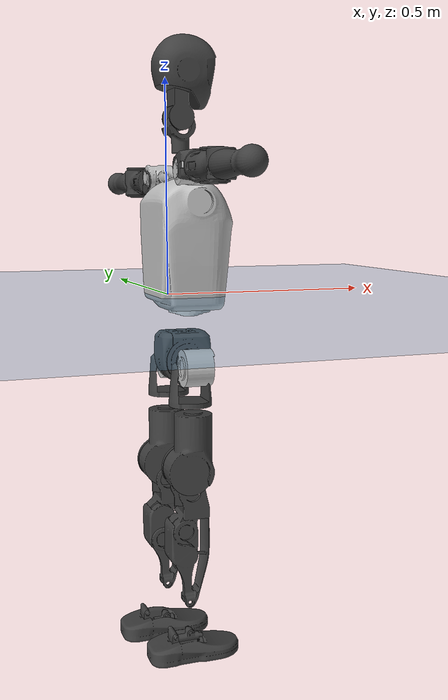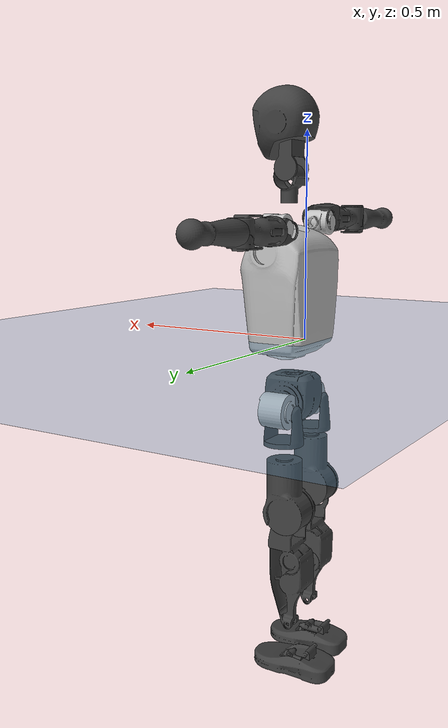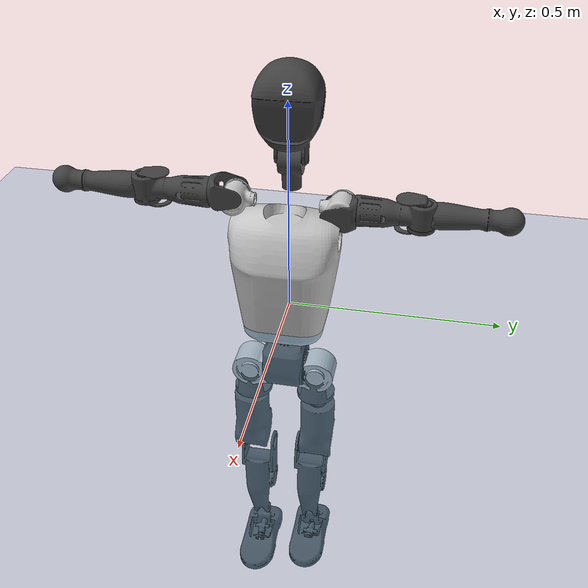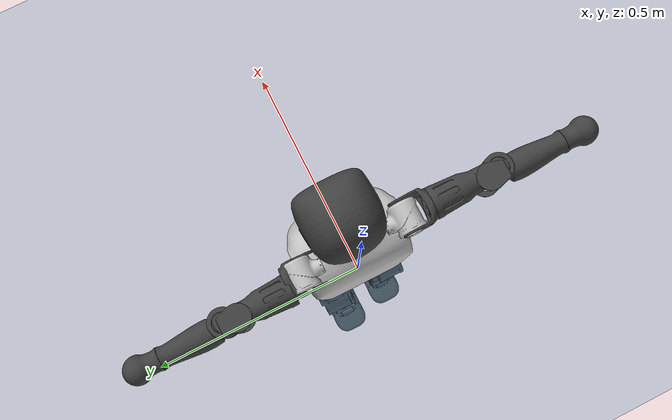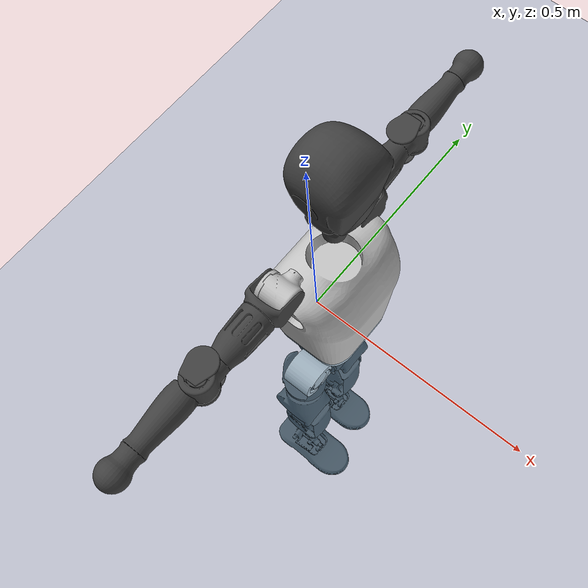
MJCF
<mujoco model="T1">
  <compiler angle="radian" assetdir="assets" balanceinertia="true" inertiafromgeom="false"/>

  <option timestep="0.005" density="1.2" viscosity="2e-05"/>

  <size nkey="1"/>

  <visual>
    <quality shadowsize="8192"/>
    <map shadowclip="0.5"/>
  </visual>

  <default>
    <default class="/">
      <joint armature="0.01" damping="0.01" frictionloss="0.1"/>
      <geom contype="0" conaffinity="0" group="1" solref="-1000 -80"/>
      <site size="0.01 0.005 0.005" group="5"/>
      <general forcelimited="true" biastype="affine" gainprm="25" biasprm="0 -25 -0.6"/>
      <default class="t1">
        <geom rgba="0.25 0.25 0.25 1"/>
        <default class="visual">
          <geom type="mesh" group="2"/>
        </default>
        <default class="collision">
          <geom group="3"/>
        </default>
        <default class="foot">
          <geom size="0.1115 0.05 0.015" type="box" condim="6" group="4" priority="1" solimp="0.015 1 0.015"/>
        </default>
        <default class="reward_collision_sphere">
          <geom group="5" rgba="1 0 0 1"/>
        </default>
      </default>
    </default>
  </default>

  <asset>
    <texture type="skybox" colorspace="auto" name="//unnamed_texture_0" builtin="gradient" rgb1="0.95 0.95 0.95" rgb2="0.95 0.95 0.95" width="100" height="600"/>
    <texture type="2d" colorspace="auto" name="texplane" builtin="checker" rgb1="0.345 0.575 0.748" rgb2="0.345 0.575 0.748" markrgb="1 1 1" width="512" height="512"/>
    <material name="MatPlane" class="/" texture="texplane" texuniform="true" texrepeat="2 2" specular="0.9"/>
    <mesh name="Trunk" class="/" file="Trunk.stl"/>
    <mesh name="H1" class="/" file="H1.stl"/>
    <mesh name="H2" class="/" file="H2.stl"/>
    <mesh name="AL1" class="/" file="AL1.stl"/>
    <mesh name="AL2" class="/" file="AL2.stl"/>
    <mesh name="AL3" class="/" file="AL3.stl"/>
    <mesh name="left_hand_link" class="/" file="left_hand_link.stl"/>
    <mesh name="AR1" class="/" file="AR1.stl"/>
    <mesh name="AR2" class="/" file="AR2.stl"/>
    <mesh name="AR3" class="/" file="AR3.stl"/>
    <mesh name="right_hand_link" class="/" file="right_hand_link.stl"/>
    <mesh name="Waist" class="/" file="Waist.stl"/>
    <mesh name="Hip_Pitch_Left" class="/" file="Hip_Pitch_Left.stl"/>
    <mesh name="Hip_Roll_Left" class="/" file="Hip_Roll_Left.stl"/>
    <mesh name="Hip_Yaw_Left" class="/" file="Hip_Yaw_Left.stl"/>
    <mesh name="Shank_Left" class="/" file="Shank_Left.stl"/>
    <mesh name="Ankle_Cross_Left" class="/" file="Ankle_Cross_Left.stl"/>
    <mesh name="left_foot_link" class="/" file="left_foot_link.stl"/>
    <mesh name="Hip_Pitch_Right" class="/" file="Hip_Pitch_Right.stl"/>
    <mesh name="Hip_Roll_Right" class="/" file="Hip_Roll_Right.stl"/>
    <mesh name="Hip_Yaw_Right" class="/" file="Hip_Yaw_Right.stl"/>
    <mesh name="Shank_Right" class="/" file="Shank_Right.stl"/>
    <mesh name="Ankle_Cross_Right" class="/" file="Ankle_Cross_Right.stl"/>
    <mesh name="right_foot_link" class="/" file="right_foot_link.stl"/>
  </asset>

  <worldbody>
    <geom name="floor" class="/" size="100 100 0.125" type="plane" group="0" material="MatPlane"/>
    <light name="toplight_shadow" class="/" pos="0 0 5" dir="0.0990148 0.0990148 -0.990148" type="directional" ambient="0.04 0.04 0.04" diffuse="0.55 0.55 0.55" specular="0.12 0.12 0.12"/>
    <light name="toplight_fill" class="/" pos="0 0 5" dir="0.0990148 0.0990148 -0.990148" type="directional" castshadow="false" ambient="0.04 0.04 0.04" diffuse="0.3 0.3 0.3" specular="0.08 0.08 0.08"/>
    <body name="trunk" childclass="t1" pos="-0.00890459 0.00125366 -0.000626487" quat="0.999999 -0.00099934 -0.000413 0.000796252">
      <inertial pos="0.0295004 -0.0036556 0.144215" quat="0.999541 0.0202882 -0.0222623 0.00323606" mass="7.08274" diaginertia="0.00390991 0.022832 0.19868"/>
      <joint name="//unnamed_joint_0" type="free" armature="0" damping="0" frictionloss="0"/>
      <geom name="//unnamed_geom_1" class="visual" rgba="0.76 0.76 0.76 1" mesh="Trunk"/>
      <geom name="//unnamed_geom_2" class="collision" size="0.0659928 0.0879904 0.131986" pos="0.0328461 0 0.156447" type="box"/>
      <geom name="//unnamed_geom_3" class="reward_collision_sphere" size="0.101189" pos="0.0328461 0 0.130373"/>
      <geom name="//unnamed_geom_4" class="reward_collision_sphere" size="0.0131986" pos="0.0328461 0.0670265 0"/>
      <geom name="//unnamed_geom_5" class="reward_collision_sphere" size="0.0131986" pos="0.0328461 -0.0670265 0"/>
      <geom name="//unnamed_geom_6" class="reward_collision_sphere" size="0.0131986" pos="0.0328461 0.0843746 0.234671"/>
      <geom name="//unnamed_geom_7" class="reward_collision_sphere" size="0.0131986" pos="0.0328461 -0.0843746 0.234671"/>
      <site name="imu" pos="0.0657636 0.0306312 -0.049066" size="0.00879904"/>
      <camera name="track" pos="0 -1.57709 0" quat="0.707107 0.707107 0 0" mode="trackcom"/>
      <camera name="ego_camera" pos="0.0667871 0 0.547566" quat="-0.5 -0.5 0.5 0.5"/>
      <body name="H1" pos="0.0487928 0.0135653 0.331348" quat="0.999998 -0.000930162 0.00107533 0.00147816">
        <inertial pos="0.00771694 -0.00371208 0.0816376" quat="0.792005 0.0345917 -0.00808681 0.60948" mass="0.259965" diaginertia="1.18049e-05 7.95019e-05 0.000555375"/>
        <joint name="AAHead_yaw" pos="0 0 0" axis="0.0172329 0.061625 0.997951" range="-1.56385 1.47428" armature="0.00405794" damping="0" frictionloss="0.0546454"/>
        <geom name="//unnamed_geom_8" class="visual" mesh="H1"/>
        <body name="H2" pos="-0.00534641 -0.000630251 0.0813095" quat="0.999985 0.00393759 -0.00299648 0.00217136">
          <inertial pos="0.0038991 0.0149989 0.128293" quat="0.989205 0.109247 -0.0745303 -0.0631098" mass="0.391199" diaginertia="0.000112895 0.000623759 0.00622007"/>
          <joint name="Head_pitch" pos="0 0 0" axis="0.00232377 -0.999996 0.0015299" stiffness="0.0372221" range="-1.30406 0.365875" armature="0.00520842" damping="0" frictionloss="0.0933015"/>
          <geom name="//unnamed_geom_9" class="visual" mesh="H2"/>
          <geom name="//unnamed_geom_10" class="collision" size="0.0703923" pos="0.00547435 0 0.14341"/>
          <geom name="//unnamed_geom_11" class="reward_collision_sphere" size="0.0791913" pos="0.0109487 0 0.130373"/>
        </body>
      </body>
      <body name="AL1" pos="0.0257158 0.0714161 0.277225" quat="1 -0.000123896 8.63263e-05 0.000185864">
        <inertial pos="0.0133563 0.0221883 0.0103458" quat="0.489792 0.496785 -0.51619 0.496847" mass="0.298478" diaginertia="5.4649e-05 0.000322289 0.000993125"/>
        <joint name="Left_Shoulder_Pitch" pos="0 0 0" axis="-0.00890598 0.998969 -0.0445063" range="-3.43577 1.25022" armature="0.00538602" damping="0" frictionloss="0.128734"/>
        <geom name="//unnamed_geom_12" class="visual" rgba="0.76 0.76 0.76 1" mesh="AL1"/>
        <body name="AL2" pos="-0.000693001 0.0255535 -0.00901144" quat="0.999996 -0.00271389 0.000366326 -0.000588785">
          <inertial pos="0.00189196 0.0335794 -0.00735477" quat="0.486891 0.512676 -0.487072 0.5127" mass="0.103442" diaginertia="1.43737e-05 7.26837e-05 0.00061701"/>
          <joint name="Left_Shoulder_Roll" pos="0 0 0" axis="-0.999563 0.0217994 -0.0199494" stiffness="0.0150474" range="-1.75235 1.97993" armature="0.00924188" damping="0" frictionloss="0.0945629"/>
          <geom name="//unnamed_geom_13" class="visual" mesh="AL2"/>
          <body name="AL3" pos="-0.0130989 0.0480994 0.000772705" quat="0.999991 0.00283551 -0.00305224 0.000629954">
            <inertial pos="-0.00157486 0.0637778 -0.0109548" quat="0.679633 0.732505 -0.0321927 0.0223456" mass="0.678518" diaginertia="0.000517306 0.00375586 0.00220834"/>
            <joint name="Left_Elbow_Pitch" pos="0 0 0" axis="-0.00794288 -0.999968 -0.000879121" stiffness="0.0251355" range="-2.24786 2.04455" armature="0.0137068" damping="0.0388054" frictionloss="0.0858501"/>
            <geom name="//unnamed_geom_14" class="visual" mesh="AL3"/>
            <geom name="//unnamed_geom_15" class="collision" size="0.0263971 0.0659928" pos="0 0.0394274 0" quat="0.707105 0.707108 0 0" type="cylinder"/>
            <geom name="//unnamed_geom_16" class="reward_collision_sphere" size="0.0316765"/>
            <body name="left_hand_link" pos="-0.00531069 0.116825 0.00144061" quat="0.999987 0.00457822 -0.000158696 0.00222897">
              <inertial pos="-0.0149554 0.0977255 0.00276499" quat="0.720481 0.6932 0.0185857 -0.00600598" mass="0.252613" diaginertia="0.00040911 0.00254022 0.000953711"/>
              <joint name="Left_Elbow_Yaw" pos="0 0 0" axis="0.000939699 0.0447124 0.998999" range="-2.5866 0.164465" armature="0.00384594" damping="0" frictionloss="0.0415161"/>
              <geom name="//unnamed_geom_17" class="visual" mesh="left_hand_link"/>
              <geom name="//unnamed_geom_18" class="collision" size="0.0263971 0.0769916" pos="0 0.102511 0" quat="0.707105 0.707108 0 0" type="cylinder"/>
              <geom name="//unnamed_geom_19" class="reward_collision_sphere" size="0.0439952"/>
              <geom name="//unnamed_geom_20" class="reward_collision_sphere" size="0.0307966" pos="0 0.0867402 0"/>
              <geom name="//unnamed_geom_21" class="reward_collision_sphere" size="0.0307966" pos="0 0.169538 0"/>
            </body>
          </body>
        </body>
      </body>
      <body name="AR1" pos="0.0329761 -0.0714983 0.284441" quat="0.999994 0.000357531 -0.00226518 0.00264384">
        <inertial pos="-0.00723928 -0.0402648 0.00104705" quat="0.502203 0.496006 -0.505597 0.496127" mass="0.359698" diaginertia="7.03534e-05 0.000382361 0.00108507"/>
        <joint name="Right_Shoulder_Pitch" pos="0 0 0" axis="0.00620553 -0.999964 -0.00571679" range="-1.22736 3.21634" armature="0.0051924" damping="0.0732028" frictionloss="0.122836"/>
        <geom name="//unnamed_geom_22" class="visual" rgba="0.76 0.76 0.76 1" mesh="AR1"/>
        <body name="AR2" pos="0.000957522 -0.0434033 0.0126341" quat="0.999999 0.000824795 -0.000442519 0.000925781">
          <inertial pos="0.00990817 -0.0402846 0.0137542" quat="0.514122 0.490051 -0.511008 0.484149" mass="0.0975758" diaginertia="1.75764e-05 0.0001093 0.000545735"/>
          <joint name="Right_Shoulder_Roll" pos="0 0 0" axis="-0.999535 -0.0249284 -0.0175419" stiffness="0.0582906" range="-2.02189 1.61361" armature="0.00627451" damping="0" frictionloss="0.0883875"/>
          <geom name="//unnamed_geom_23" class="visual" mesh="AR2"/>
          <body name="AR3" pos="1.40863e-05 -0.0564205 -0.00474435" quat="1 -8.25454e-06 7.24634e-05 1.6492e-05">
            <inertial pos="0.012789 -0.0725954 0.000998598" quat="0.699642 0.713607 -0.0343216 0.00938809" mass="0.708976" diaginertia="0.000664272 0.00390172 0.00197912"/>
            <joint name="Right_Elbow_Pitch" pos="0 0 0" axis="0.0148017 0.999357 -0.0326684" stiffness="0.0532221" range="-2.28795 2.44334" armature="0.00829969" damping="0.0197538" frictionloss="0.14506"/>
            <geom name="//unnamed_geom_24" class="visual" mesh="AR3"/>
            <geom name="//unnamed_geom_25" class="collision" size="0.0263971 0.0659928" pos="0 -0.0394274 0" quat="0.707105 0.707108 0 0" type="cylinder"/>
            <geom name="//unnamed_geom_26" class="reward_collision_sphere" size="0.0316765"/>
            <body name="right_hand_link" pos="-0.00869666 -0.123893 -0.00278479" quat="1 0.000131296 1.20253e-05 0.000156403">
              <inertial pos="-0.00092975 -0.0834081 -0.0107755" quat="0.705769 0.708441 0.000315163 0.000521362" mass="0.226168" diaginertia="0.000394039 0.00292349 0.00089598"/>
              <joint name="Right_Elbow_Yaw" pos="0 0 0" axis="0.000881481 -0.0033154 0.999994" range="-0.165199 2.54371" armature="0.00964303" damping="0.0312231" frictionloss="0.142487"/>
              <geom name="//unnamed_geom_27" class="visual" mesh="right_hand_link"/>
              <geom name="//unnamed_geom_28" class="collision" size="0.0263971 0.0769916" pos="0 -0.102511 0" quat="0.707105 0.707108 0 0" type="cylinder"/>
              <geom name="//unnamed_geom_29" class="reward_collision_sphere" size="0.0439952"/>
              <geom name="//unnamed_geom_30" class="reward_collision_sphere" size="0.0307966" pos="0 -0.0867402 0"/>
              <geom name="//unnamed_geom_31" class="reward_collision_sphere" size="0.0307966" pos="0 -0.169538 0"/>
            </body>
          </body>
        </body>
      </body>
      <body name="Waist" pos="0.0421844 -0.00471337 -0.154588" quat="0.999998 -0.000861826 0.00187849 -0.000203376">
        <inertial pos="0.00424615 -0.00103944 0.00993478" quat="0.979235 -0.013237 -0.20045 -0.0272587" mass="1.99596" diaginertia="0.000219099 0.00157223 0.0148034"/>
        <joint name="Waist" pos="0 0 0" axis="0.0245536 -0.047129 0.998587" range="-1.40709 1.73056" armature="0.00921748" damping="0.0012688" frictionloss="0.142139"/>
        <geom name="//unnamed_geom_32" class="visual" mesh="Waist"/>
        <body name="Hip_Pitch_Left" pos="0.00107542 0.0791684 0.00444837" quat="1 0.0002744 -0.000154126 6.45883e-05">
          <inertial pos="0.00320336 0.00493605 -0.0290147" quat="0.980566 0.193607 0.0240981 0.0206164" mass="0.711756" diaginertia="9.85128e-05 0.000388573 0.00399731"/>
          <joint name="Left_Hip_Pitch" pos="0 0 0" axis="-0.00823936 0.999946 -0.00639877" range="-1.7015 1.58391" armature="0.00518521" damping="0" frictionloss="0.0852771"/>
          <geom name="//unnamed_geom_33" class="visual" rgba="0.76 0.76 0.76 1" mesh="Hip_Pitch_Left"/>
          <body name="Hip_Roll_Left" pos="-0.0126788 -0.00360866 -0.0283196" quat="0.999983 -0.00140729 -0.00145255 -0.00548">
            <inertial pos="-0.00831987 0.000375893 -0.0711805" quat="0.706827 -0.00591516 -0.00607385 0.707335" mass="0.348512" diaginertia="0.000118359 0.000550357 0.00220321"/>
            <joint name="Left_Hip_Roll" pos="0 0 0" axis="-0.998388 0.0347987 -0.0448432" range="-1.83275 0.218666" armature="0.012475" damping="0.0426924" frictionloss="0.113765"/>
            <geom name="//unnamed_geom_34" class="visual" mesh="Hip_Roll_Left"/>
            <geom name="//unnamed_geom_35" class="reward_collision_sphere" size="0.0483947"/>
            <body name="Hip_Yaw_Left" pos="-0.00777958 0.00460438 -0.114569" quat="0.999982 -0.00383534 0.0012989 0.0043132">
              <inertial pos="0.00949862 0.00364896 -0.111654" quat="0.700415 -0.0182662 -0.0220608 0.713161" mass="1.5188" diaginertia="0.00109096 0.00797349 0.00998773"/>
              <joint name="Left_Hip_Yaw" pos="0 0 0" axis="0.0183994 0.0107483 -0.999773" stiffness="0.0607723" range="-1.28018 0.767973" armature="0.00851594" damping="0.00259295" frictionloss="0.0397062"/>
              <geom name="//unnamed_geom_36" class="visual" mesh="Hip_Yaw_Left"/>
              <geom name="//unnamed_geom_37" class="collision" size="0.0439952 0.0703923" type="cylinder"/>
              <body name="Shank_Left" pos="-0.0107097 -0.0127636 -0.169409" quat="1 0.000129061 7.57889e-06 1.15827e-05">
                <inertial pos="0.0106553 -0.00414553 -0.166792" quat="0.997132 -0.0573089 0.0096675 0.0484722" mass="1.30443" diaginertia="0.00171165 0.0086183 0.00622331"/>
                <joint name="Left_Knee_Pitch" pos="0 0 0" axis="0.0452591 0.998535 0.0296602" stiffness="0.00753578" range="0.0170981 2.13566" armature="0.0130112" damping="0" frictionloss="0.0297256"/>
                <geom name="//unnamed_geom_38" class="visual" mesh="Shank_Left"/>
                <geom name="//unnamed_geom_39" class="collision" size="0.0439952 0.0659928" pos="0 0 -0.156447" type="cylinder"/>
                <geom name="//unnamed_geom_40" class="reward_collision_sphere" size="0.0571937"/>
                <body name="Ankle_Cross_Left" pos="-0.00118582 0.00137435 -0.371427" quat="1 -0.000457594 0.00067707 6.73711e-05">
                  <inertial pos="-0.000838014 -0.00328588 -0.00917019" quat="0.441401 0.548613 0.549905 0.449214" mass="0.0447038" diaginertia="1.18336e-06 7.19592e-06 3.72133e-05"/>
                  <joint name="Left_Ankle_Pitch" pos="0 0 0" axis="0.0446939 0.998783 0.0208728" stiffness="0.0266041" range="-0.871204 0.531734" armature="0.00278692" damping="0.0221293" frictionloss="0.116657"/>
                  <geom name="//unnamed_geom_41" class="visual" mesh="Ankle_Cross_Left"/>
                  <body name="left_foot_link" pos="-0.0141653 -0.00357606 -0.0094052" quat="1 -0.000282516 -0.000280099 -0.000461336">
                    <inertial pos="0.012965 -0.00890366 -0.0117753" quat="0.00126797 0.623668 -0.0091895 0.781634" mass="0.475002" diaginertia="0.000130207 0.000681997 0.00925585"/>
                    <joint name="Left_Ankle_Roll" pos="0 0 0" axis="-0.999985 0.00418051 0.00345072" range="-0.601938 0.579762" armature="0.00891143" damping="0.0775747" frictionloss="0.0971245"/>
                    <geom name="//unnamed_geom_42" class="visual" mesh="left_foot_link"/>
                    <geom name="left_foot" class="foot" size="0.125986 0.0633349 0.0170353" pos="0.00547435 0 -0.0195559"/>
                    <geom name="//unnamed_geom_44" class="reward_collision_sphere" size="0.045755" pos="0.00547435 0 -0.0195559"/>
                    <geom name="//unnamed_geom_45" class="reward_collision_sphere" size="0.0263971" pos="0.0520064 -0.0181366 -0.0195559"/>
                    <geom name="//unnamed_geom_46" class="reward_collision_sphere" size="0.0263971" pos="-0.0383205 -0.0181366 -0.0195559"/>
                    <site name="left_foot" class="foot" pos="0.00547435 0 -0.0195559" size="0.00879904"/>
                  </body>
                </body>
              </body>
            </body>
          </body>
        </body>
        <body name="Hip_Pitch_Right" pos="0.00852935 -0.0847079 0.00892006" quat="0.999999 0.00102648 0.0008164 -2.86762e-05">
          <inertial pos="0.00254316 0.00464652 -0.0119842" quat="0.974261 -0.224152 0.0164016 0.0174023" mass="0.684777" diaginertia="0.000104248 0.000377298 0.0043316"/>
          <joint name="Right_Hip_Pitch" pos="0 0 0" axis="0.0280533 -0.9995 -0.0145723" stiffness="0.0301208" range="-1.27134 1.52905" armature="0.00919795" damping="0" frictionloss="0.144807"/>
          <geom name="//unnamed_geom_47" class="visual" rgba="0.76 0.76 0.76 1" mesh="Hip_Pitch_Right"/>
          <body name="Hip_Roll_Right" pos="-0.0130276 -0.0018004 -0.0308667" quat="0.999999 0.000304349 0.000880731 -0.00112237">
            <inertial pos="0.00518894 0.0103449 -0.0806437" quat="0.719783 -0.0127822 0.00516812 0.694062" mass="0.297402" diaginertia="9.55983e-05 0.000563069 0.001855"/>
            <joint name="Right_Hip_Roll" pos="0 0 0" axis="-0.997916 -0.0248699 0.0595345" stiffness="0.00916242" range="-0.177138 1.63775" armature="0.0129916" damping="0.00111034" frictionloss="0.0750457"/>
            <geom name="//unnamed_geom_48" class="visual" mesh="Hip_Roll_Right"/>
            <geom name="//unnamed_geom_49" class="reward_collision_sphere" size="0.0483947"/>
            <body name="Hip_Yaw_Right" pos="0.00240622 -0.00611956 -0.0959369" quat="0.999998 0.00111306 -0.00133964 0.000842267">
              <inertial pos="-0.0111481 -0.0125206 -0.108099" quat="0.733238 0.024297 -0.0701129 0.675911" mass="1.46327" diaginertia="0.00123249 0.00841431 0.0107638"/>
              <joint name="Right_Hip_Yaw" pos="0 0 0" axis="-0.00264986 -0.00314425 -0.999992" range="-0.913457 0.921588" armature="0.00957257" damping="0.0186593" frictionloss="0.0857421"/>
              <geom name="//unnamed_geom_50" class="visual" mesh="Hip_Yaw_Right"/>
              <geom name="//unnamed_geom_51" class="collision" size="0.0439952 0.0703923" type="cylinder"/>
              <body name="Shank_Right" pos="-0.0106433 0.0128996 -0.185384" quat="1 0.000630506 -0.000666728 -6.85873e-05">
                <inertial pos="0.010386 -0.0148855 -0.153222" quat="0.996757 -0.010339 -0.00441572 -0.0796869" mass="1.01988" diaginertia="0.00191134 0.0115932 0.00779279"/>
                <joint name="Right_Knee_Pitch" pos="0 0 0" axis="0.00244681 -0.999924 -0.0120625" range="-2.19164 -0.0116817" armature="0.00867858" damping="0" frictionloss="0.116729"/>
                <geom name="//unnamed_geom_52" class="visual" mesh="Shank_Right"/>
                <geom name="//unnamed_geom_53" class="collision" size="0.0439952 0.0659928" pos="0 0 -0.156447" type="cylinder"/>
                <geom name="//unnamed_geom_54" class="reward_collision_sphere" size="0.0571937"/>
                <body name="Ankle_Cross_Right" pos="0.00202928 -0.00414687 -0.361533" quat="1 0.00026278 6.80609e-05 -3.64155e-05">
                  <inertial pos="0.00217123 0.0113802 -0.0146856" quat="0.426021 0.600816 0.542927 0.403431" mass="0.0475507" diaginertia="1.37485e-06 1.05825e-05 4.90761e-05"/>
                  <joint name="Right_Ankle_Pitch" pos="0 0 0" axis="-0.00314694 -0.99879 0.0490832" range="-0.490666 0.866766" armature="0.00426818" damping="0.0688422" frictionloss="0.0867705"/>
                  <geom name="//unnamed_geom_55" class="visual" mesh="Ankle_Cross_Right"/>
                  <body name="right_foot_link" pos="-0.0013004 -0.00376948 -0.0278709" quat="1 2.75788e-05 -5.31155e-05 8.79437e-06">
                    <inertial pos="0.00356843 -0.00556105 -0.0239102" quat="-0.00559713 0.588981 0.00883426 0.808079" mass="0.48746" diaginertia="0.000113932 0.000685833 0.00828832"/>
                    <joint name="Right_Ankle_Roll" pos="0 0 0" axis="-0.999999 0.00154238 0.000496902" range="-0.443031 0.611118" armature="0.0105034" damping="0.00993739" frictionloss="0.127535"/>
                    <geom name="//unnamed_geom_56" class="visual" mesh="right_foot_link"/>
                    <geom name="right_foot" class="foot" size="0.0930887 0.0429709 0.0105605" pos="0.00547435 0 -0.0195559"/>
                    <geom name="//unnamed_geom_58" class="reward_collision_sphere" size="0.0351961"/>
                    <geom name="//unnamed_geom_59" class="reward_collision_sphere" size="0.0263971" pos="0.00547435 0 -0.0195559"/>
                    <geom name="//unnamed_geom_60" class="reward_collision_sphere" size="0.0263971" pos="0.0520064 0.0181366 -0.0195559"/>
                    <geom name="//unnamed_geom_61" class="reward_collision_sphere" size="0.0263971" pos="-0.0383205 0.0181366 -0.0195559"/>
                    <site name="right_foot" class="foot" pos="0.00547435 0 -0.0195559" size="0.00879904"/>
                  </body>
                </body>
              </body>
            </body>
          </body>
        </body>
      </body>
    </body>
  </worldbody>

  <contact>
    <pair class="/" geom1="floor" geom2="left_foot" name="//unnamed_contact_0"/>
    <pair class="/" geom1="floor" geom2="right_foot" name="//unnamed_contact_1"/>
  </contact>

  <actuator>
    <general name="AAHead_yaw" class="/" joint="AAHead_yaw" forcerange="-4.00573 4.00573" gainprm="18.9481" biasprm="0 -18.9481 -0.671191"/>
    <general name="Head_pitch" class="/" joint="Head_pitch" forcerange="-5.47616 5.47616" gainprm="18.9481" biasprm="0 -18.9481 -0.671191"/>
    <general name="Left_Shoulder_Pitch" class="/" joint="Left_Shoulder_Pitch" forcerange="-15.4752 15.4752" gainprm="18.9481" biasprm="0 -18.9481 -0.671191"/>
    <general name="Left_Shoulder_Roll" class="/" joint="Left_Shoulder_Roll" forcerange="-15.8768 15.8768" gainprm="18.9481" biasprm="0 -18.9481 -0.671191"/>
    <general name="Left_Elbow_Pitch" class="/" joint="Left_Elbow_Pitch" forcerange="-9.99439 9.99439" gainprm="18.9481" biasprm="0 -18.9481 -0.671191"/>
    <general name="Left_Elbow_Yaw" class="/" joint="Left_Elbow_Yaw" forcerange="-11.2922 11.2922" gainprm="18.9481" biasprm="0 -18.9481 -0.671191"/>
    <general name="Right_Shoulder_Pitch" class="/" joint="Right_Shoulder_Pitch" forcerange="-19.6018 19.6018" gainprm="18.9481" biasprm="0 -18.9481 -0.671191"/>
    <general name="Right_Shoulder_Roll" class="/" joint="Right_Shoulder_Roll" forcerange="-18.0564 18.0564" gainprm="18.9481" biasprm="0 -18.9481 -0.671191"/>
    <general name="Right_Elbow_Pitch" class="/" joint="Right_Elbow_Pitch" forcerange="-16.6712 16.6712" gainprm="18.9481" biasprm="0 -18.9481 -0.671191"/>
    <general name="Right_Elbow_Yaw" class="/" joint="Right_Elbow_Yaw" forcerange="-13.5674 13.5674" gainprm="18.9481" biasprm="0 -18.9481 -0.671191"/>
    <general name="Waist" class="/" joint="Waist" forcerange="-29.2333 29.2333" gainprm="18.9481" biasprm="0 -18.9481 -0.671191"/>
    <general name="Left_Hip_Pitch" class="/" joint="Left_Hip_Pitch" forcerange="-39.981 39.981" gainprm="18.9481" biasprm="0 -18.9481 -0.671191"/>
    <general name="Left_Hip_Roll" class="/" joint="Left_Hip_Roll" forcerange="-23.7562 23.7562" gainprm="18.9481" biasprm="0 -18.9481 -0.671191"/>
    <general name="Left_Hip_Yaw" class="/" joint="Left_Hip_Yaw" forcerange="-36.3267 36.3267" gainprm="18.9481" biasprm="0 -18.9481 -0.671191"/>
    <general name="Left_Knee_Pitch" class="/" joint="Left_Knee_Pitch" forcerange="-38.9519 38.9519" gainprm="18.9481" biasprm="0 -18.9481 -0.671191"/>
    <general name="Left_Ankle_Pitch" class="/" joint="Left_Ankle_Pitch" forcerange="-22.3703 22.3703" gainprm="18.9481" biasprm="0 -18.9481 -0.671191"/>
    <general name="Left_Ankle_Roll" class="/" joint="Left_Ankle_Roll" forcerange="-13.2085 13.2085" gainprm="18.9481" biasprm="0 -18.9481 -0.671191"/>
    <general name="Right_Hip_Pitch" class="/" joint="Right_Hip_Pitch" forcerange="-41.1778 41.1778" gainprm="18.9481" biasprm="0 -18.9481 -0.671191"/>
    <general name="Right_Hip_Roll" class="/" joint="Right_Hip_Roll" forcerange="-28.7962 28.7962" gainprm="18.9481" biasprm="0 -18.9481 -0.671191"/>
    <general name="Right_Hip_Yaw" class="/" joint="Right_Hip_Yaw" forcerange="-31.3602 31.3602" gainprm="18.9481" biasprm="0 -18.9481 -0.671191"/>
    <general name="Right_Knee_Pitch" class="/" joint="Right_Knee_Pitch" forcerange="-73.1478 73.1478" gainprm="18.9481" biasprm="0 -18.9481 -0.671191"/>
    <general name="Right_Ankle_Pitch" class="/" joint="Right_Ankle_Pitch" forcerange="-25.4251 25.4251" gainprm="18.9481" biasprm="0 -18.9481 -0.671191"/>
    <general name="Right_Ankle_Roll" class="/" joint="Right_Ankle_Roll" forcerange="-10.7921 10.7921" gainprm="18.9481" biasprm="0 -18.9481 -0.671191"/>
  </actuator>

  <sensor>
    <gyro site="imu" name="imu_angular_velocity"/>
    <velocimeter site="imu" name="imu_linear_velocity"/>
    <framelinvel objtype="site" objname="left_foot" name="left_foot_global_linear_velocity"/>
    <framelinvel objtype="site" objname="right_foot" name="right_foot_global_linear_velocity"/>
  </sensor>

  <keyframe>
    <key name="home" qpos="0 0 0.6385 1 0 0 0 0 0 0 1.4 0 -0.4 0 -1.4 0 0.4 0 -0.4 0 0 0.8 -0.4 0 0.4 0 0 -0.8 0.4 0"/>
  </keyframe>
</mujoco>
